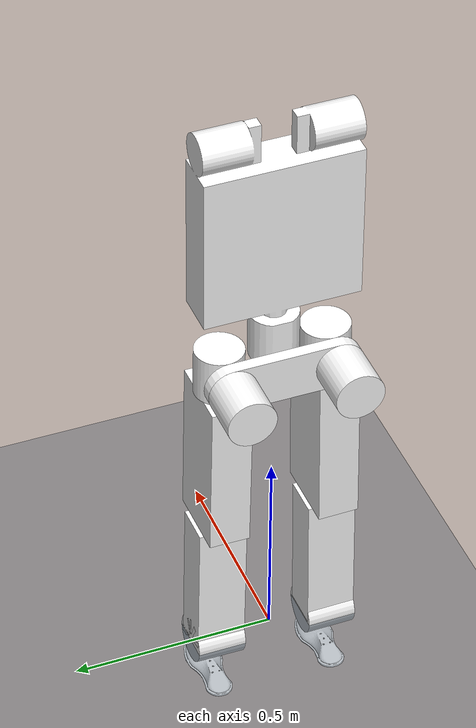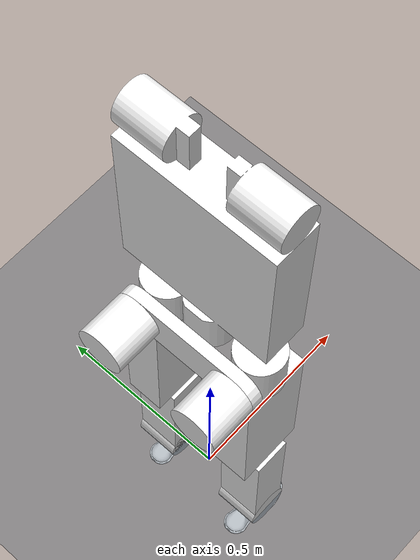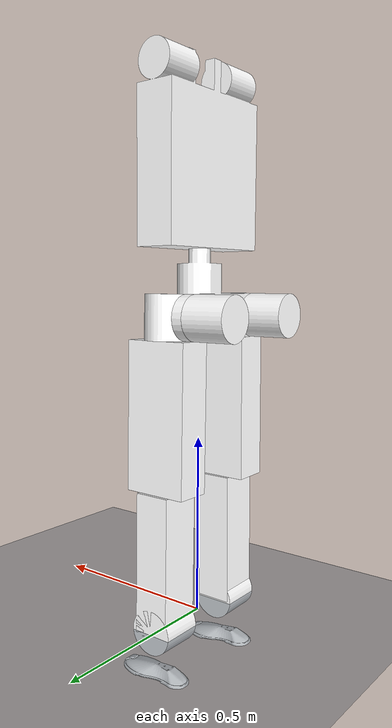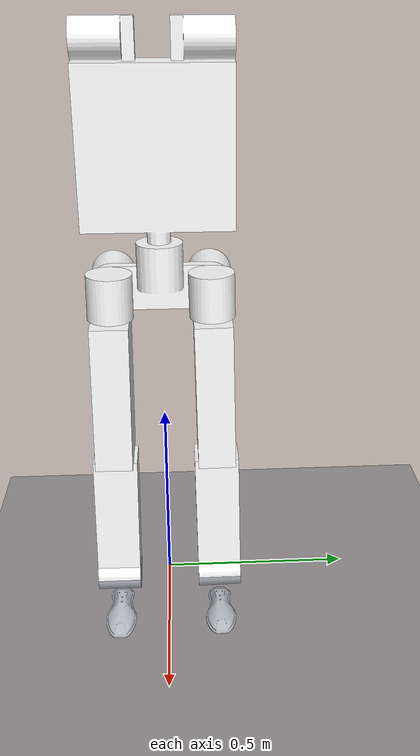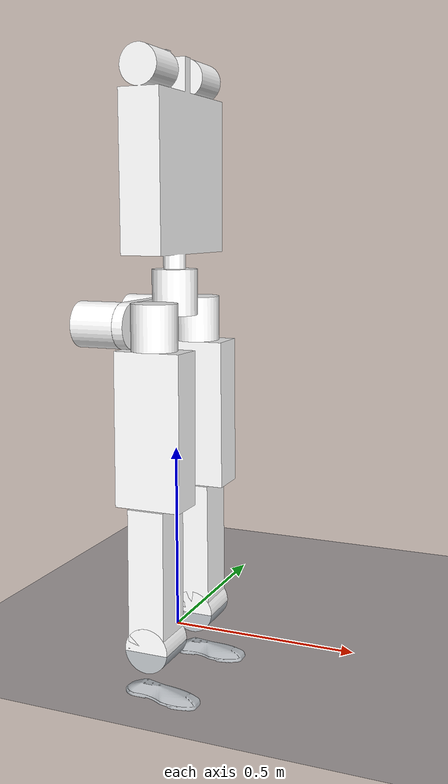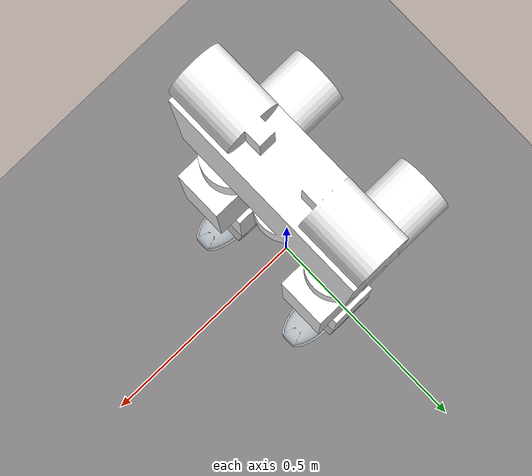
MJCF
<mujoco model="assembly_cowa_robot_new_foot4">
  <compiler angle="radian"/>
  <statistic meansize="0.165694" extent="1.91182" center="-0.00860132 3.79904e-10 -0.516269"/>
    <option timestep='0.001' iterations='50' solver='PGS' gravity='0 0 -9.81'>
    <flag sensornoise="enable" frictionloss="enable"/>
    </option>
    <size njmax="500" nconmax="100" />

    <default>
        <joint limited='true'/>
        <motor ctrllimited='true'/>
        <geom  condim='4' contype="1" conaffinity="15" solref='0.001 2' friction='0.9 0.2 0.2'/>
        <equality solref='0.001 2'/>
        <default class='visualgeom'>
            <geom material='visualgeom' condim='1' contype='0' conaffinity='0'/>
        </default>
    </default>

  <asset>
    <material name='visualgeom'  rgba='0.5 0.9 0.2 1'/>

    <mesh name="base_link" file="base_link.STL"/>
    <mesh name="left_leg_roll_link" file="left_leg_roll_link.STL"/>
    <mesh name="left_leg_yaw_link" file="left_leg_yaw_link.STL"/>
    <mesh name="left_leg_pitch_link" file="left_leg_pitch_link.STL"/>
    <mesh name="left_knee_link" file="left_knee_link.STL"/>
    <mesh name="left_ankle_pitch_link" file="left_ankle_pitch_link.STL"/>
    <mesh name="left_ankle_roll_link" file="left_ankle_roll_link111.STL"/>
    <mesh name="right_leg_roll_link" file="right_leg_roll_link.STL"/>
    <mesh name="right_leg_yaw_link" file="right_leg_yaw_link.STL"/>
    <mesh name="right_leg_pitch_link" file="right_leg_pitch_link.STL"/>
    <mesh name="right_knee_link" file="right_knee_link.STL"/>
    <mesh name="right_ankle_pitch_link" file="right_ankle_pitch_link.STL"/>
    <mesh name="right_ankle_roll_link" file="right_ankle_roll_link111.STL"/>

    <material name="matplane" reflectance="0." texture="texplane" texrepeat="1 1" texuniform="true"/>
    <material name="matplane2" reflectance="0.1" texture="texplane2" texrepeat="1 1" texuniform="true"/>

    <texture type="skybox" builtin="gradient" rgb1="0.3 0.5 0.7" rgb2="0 0 0" width="512" height="512"/>
    <texture name="texplane" type="2d" builtin="checker" rgb1=".2 .3 .4" rgb2=".1 0.15 0.2"
        width="512" height="512" mark="cross" markrgb=".8 .8 .8"/>
    <texture name="texplane2" type="2d" builtin="checker" rgb1="1 0.3137 0.1843" rgb2="0.0 0.30196 0.38039"
        width="512" height="512" mark="cross" markrgb=".8 .8 .8"/>

  </asset>

  <worldbody>

    <light directional="true" diffuse=".4 .4 .4" specular="0.1 0.1 0.1" pos="0 0 5.0" dir="0 0 -1" castshadow="false"/>
    <light directional="true" diffuse=".6 .6 .6" specular="0.2 0.2 0.2" pos="0 0 4" dir="0 0 -1"/>
    <geom name="ground" type="plane" size="0 0 1" pos="0.001 0 0" quat="1 0 0 0" material="matplane" condim="1" conaffinity='15'/>

    <body name="base_link" pos="0.0 0.0 1.22">
          <inertial pos="-0.0041092 0 -0.018435" quat="0.999967 0 0.0081641 0" mass="21.702" diaginertia="0.476381 0.27338 0.248479" />
      <joint type='slide' axis='1 0 0' limited='false' />
      <joint type='slide' axis='0 1 0' limited='false' />
      <joint type='slide' axis='0 0 1' limited='false' />
      <joint type='ball' limited='false' />
    <site name='imu' size='0.01' pos='0.0 0 0.0'/>

    <geom type="mesh" contype="1" conaffinity="1" group="1" class="visualgeom"  density="0" rgba="1 1 1 1" mesh="base_link"/>
    <body name="left_leg_roll_link" pos="-0.055 0.132 -0.38" quat="0.00494581 -0.707089 -0.00495101 0.707089">
      <inertial pos="0 0 0.09" mass="1.35717" diaginertia="0.0285005 0.0285005 0.024429"/>
      <joint name="left_leg_roll_joint" pos="0 0 0" axis="0 0 1" range="-2.5 0.12"/>
      <geom type="mesh" contype="0" conaffinity="0" group="1" class="visualgeom" density="0" rgba="1 1 1 1" mesh="left_leg_roll_link"/>
      <body name="left_leg_yaw_link" pos="0 0 -0.06" quat="0.707105 0 0.707108 0">
        <inertial pos="0 0 0" mass="1.3572" diaginertia="0.028501 0.028501 0.024429"/>
        <joint name="left_leg_yaw_joint" pos="0 0 0" axis="0 0 1" range="-0.5 0.5"/>
        <geom type="mesh" contype="0" conaffinity="0" group="1" class="visualgeom" density="0" rgba="1 1 1 1" mesh="left_leg_yaw_link"/>
        <body name="left_leg_pitch_link" pos="0 0 0.06" quat="0.499998 0.5 -0.5 0.500002">
          <inertial pos="0.202 0 0" quat="0.707107 0.707107 0 0" mass="8.7" diaginertia="0.25694 0.15854 0.10497"/>
          <joint name="left_leg_pitch_joint" pos="0 0 0" axis="0 0 1" range="-2 0.23"/>
          <geom type="mesh" contype="1" conaffinity="15" group="1" class="visualgeom" density="0" rgba="1 1 1 1" mesh="left_leg_pitch_link"/>
          <body name="left_knee_link" pos="0.404 0 0">
            <inertial pos="0.1865 0 0" quat="0.5 0.5 0.5 0.5" mass="3" diaginertia="0.57266 0.55625 0.091012"/>
            <joint name="left_knee_joint" pos="0 0 0" axis="0 0 1" range="-0.1 1.8"/>
            <geom type="mesh" contype="0" conaffinity="0" group="1" class="visualgeom" density="0" rgba="1 1 1 1" mesh="left_knee_link"/>
            <body name="left_ankle_pitch_link" pos="0.373 0 0" quat="0.717075 0 0 -0.696996">
              <inertial pos="0 0 0" mass="1.35717" diaginertia="0.0285005 0.0285005 0.024429"/>
              <joint name="left_ankle_pitch_joint" pos="0 0 0" axis="0 0 1" range="-1 0.5"/>
              <geom type="mesh" contype="0" conaffinity="0" group="1" class="visualgeom" density="0" rgba="1 1 1 1" mesh="left_ankle_pitch_link"/>
              <body name="left_ankle_roll_link" pos="0 0.0 0" quat="0.0149799 0.707089 -0.00507216 0.706948">
                <inertial pos="0.00022772 -0.0491 -0.0014033" quat="0.999948 0.0100299 0.000389691 0.00150337" mass="0.5612" diaginertia="0.32058 0.280467 0.187282"/>
                <joint name="left_ankle_roll_joint" pos="0 0 0." axis="-0.000 0.0283529 -0.999598" range="-0.3 0.3"/>
                <geom condim='4' solref='0.001 2' friction='0.9 0.2 0.2' type="mesh" contype="1" conaffinity="15" group="1" class="visualgeom" density="0" rgba="1 1 1 1" mesh="left_ankle_roll_link"/>
              </body>
            </body>
          </body>
        </body>
      </body>
    </body>
    <body name="right_leg_roll_link" pos="-0.055 -0.132 -0.38" quat="0.503489 0.496485 0.503493 0.496485">
      <inertial pos="0 0 -0.09" mass="1.35717" diaginertia="0.0285005 0.0285005 0.024429"/>
      <joint name="right_leg_roll_joint" pos="0 0 0" axis="0 0 1" range="-1.2 0.12"/>
      <geom type="mesh" contype="0" conaffinity="0" group="1" class="visualgeom" density="0" rgba="1 1 1 1" mesh="right_leg_roll_link"/>
      <body name="right_leg_yaw_link" pos="0 0 0.06" quat="0.499998 0.5 -0.5 0.500002">
        <inertial pos="0 0 0" mass="1.35717" diaginertia="0.0285005 0.0285005 0.024429"/>
        <joint name="right_leg_yaw_joint" pos="0 0 0" axis="0 0 -1" range="-0.5 0.5"/>
        <geom type="mesh" contype="0" conaffinity="0" group="1" class="visualgeom" density="0" rgba="1 1 1 1" mesh="right_leg_yaw_link"/>
        <body name="right_leg_pitch_link" pos="0 0 0.06" quat="0.499998 0.5 -0.5 0.500002">
          <inertial pos="0.202 0 0" quat="0.707107 0.707107 0 0" mass="8.7" diaginertia="0.256944 0.158543 0.104969"/>
          <joint name="right_leg_pitch_joint" pos="0 0 0" axis="0 0 1" range="-2 0.23"/>
          <geom type="mesh" contype="1" conaffinity="15" group="1" class="visualgeom" density="0" rgba="1 1 1 1" mesh="right_leg_pitch_link"/>
          <body name="right_knee_link" pos="0.39854 0 -0.071004">
            <inertial pos="0.191965 0 0.0710042" quat="0.5 0.5 0.5 0.5" mass="3" diaginertia="0.572663 0.556251 0.091012"/>
            <joint name="right_knee_joint" pos="0 0 0" axis="0 0 1" range="-0.1 1.8"/>
            <geom type="mesh" contype="0" conaffinity="0" group="1" class="visualgeom" density="0" rgba="1 1 1 1" mesh="right_knee_link"/>
            <body name="right_ankle_pitch_link" pos="0.37846 0 0.071004" quat="0.707105 0 0 -0.707108">
              <inertial pos="0 0 0" mass="1.35717" diaginertia="0.0285005 0.0285005 0.024429"/>
              <joint name="right_ankle_pitch_joint" pos="0 0 0" axis="0 0 1" range="-1 0.5"/>
              <geom type="mesh" contype="0" conaffinity="0" group="1" class="visualgeom" density="0" rgba="1 1 1 1" mesh="right_ankle_pitch_link"/>
              <body name="right_ankle_roll_link" pos="0 0.0 0" quat="0.0283042 -0.706541 -0.0283041 -0.706539">
                <inertial pos="-2.04624e-07 -0.0490985 -0.00140333" quat="0.999949 0.0100392 0.000294159 0.000806362" mass="0.5612" diaginertia="0.320607 0.280445 0.187287"/>
                <joint name="right_ankle_roll_joint" pos="0 0.0 0" axis="0 0.0283559 -0.999598" range="-0.3 0.3"/>
                <geom condim='4' solref='0.001 2' friction='0.9 0.2 0.2' type="mesh" contype="1" conaffinity="15" group="1" class="visualgeom" density="0" rgba="1 1 1 1" mesh="right_ankle_roll_link"/>
              </body>
            </body>
          </body>
        </body>
      </body>
    </body>
  </body>
  </worldbody>
  <actuator>
    <motor name="left_leg_roll_joint" joint="left_leg_roll_joint" gear="1" ctrllimited="true" ctrlrange="-100 100"/>
    <motor name="left_leg_yaw_joint" joint="left_leg_yaw_joint" gear="1" ctrllimited="true" ctrlrange="-100 100"/>
    <motor name="left_leg_pitch_joint" joint="left_leg_pitch_joint" gear="1" ctrllimited="true" ctrlrange="-250 250"/>
    <motor name="left_knee_joint" joint="left_knee_joint" gear="1" ctrllimited="true" ctrlrange="-250 250"/>
    <motor name="left_ankle_pitch_joint" joint="left_ankle_pitch_joint" gear="1" ctrllimited="true" ctrlrange="-75 75"/>
    <motor name="left_ankle_roll_joint" joint="left_ankle_roll_joint" gear="1" ctrllimited="true" ctrlrange="-75 75"/>
    <motor name="right_leg_roll_joint" joint="right_leg_roll_joint" gear="1" ctrllimited="true" ctrlrange="-100 100"/>
    <motor name="right_leg_yaw_joint" joint="right_leg_yaw_joint" gear="1" ctrllimited="true" ctrlrange="-100 100"/>
    <motor name="right_leg_pitch_joint" joint="right_leg_pitch_joint" gear="1" ctrllimited="true" ctrlrange="-250 250"/>
    <motor name="right_knee_joint" joint="right_knee_joint" gear="1" ctrllimited="true" ctrlrange="-250 250"/>
    <motor name="right_ankle_pitch_joint" joint="right_ankle_pitch_joint" gear="1" ctrllimited="true" ctrlrange="-75 75"/>
    <motor name="right_ankle_roll_joint" joint="right_ankle_roll_joint" gear="1" ctrllimited="true" ctrlrange="-75 75"/>
  </actuator>

     <sensor>
        <actuatorpos name='left_leg_roll_joint_p'  actuator='left_leg_roll_joint' user='13'/>
        <actuatorpos name='left_leg_yaw_joint_p'  actuator='left_leg_yaw_joint' user='13'/>
        <actuatorpos name='left_leg_pitch_joint_p'  actuator='left_leg_pitch_joint' user='13'/>
        <actuatorpos name='left_knee_joint_p'  actuator='left_knee_joint' user='13'/>
        <actuatorpos name='left_ankle_pitch_joint_p'  actuator='left_ankle_pitch_joint' user='13'/>
        <actuatorpos name='left_ankle_roll_joint_p'  actuator='left_ankle_roll_joint' user='13'/>
        <actuatorpos name='right_leg_roll_joint_p'  actuator='right_leg_roll_joint' user='13'/>
        <actuatorpos name='right_leg_yaw_joint_p'  actuator='right_leg_yaw_joint' user='13'/>
        <actuatorpos name='right_leg_pitch_joint_p'  actuator='right_leg_pitch_joint' user='13'/>
        <actuatorpos name='right_knee_joint_p'  actuator='right_knee_joint' user='13'/>
        <actuatorpos name='right_ankle_pitch_joint_p'  actuator='right_ankle_pitch_joint' user='13'/>
        <actuatorpos name='right_ankle_roll_joint_p'  actuator='right_ankle_roll_joint' user='13'/>

        <actuatorvel name='left_leg_roll_joint_v'  actuator='left_leg_roll_joint' user='13'/>
        <actuatorvel name='left_leg_yaw_joint_v'  actuator='left_leg_yaw_joint' user='13'/>
        <actuatorvel name='left_leg_pitch_joint_v'  actuator='left_leg_pitch_joint' user='13'/>
        <actuatorvel name='left_knee_joint_v'  actuator='left_knee_joint' user='13'/>
        <actuatorvel name='left_ankle_pitch_joint_v'  actuator='left_ankle_pitch_joint' user='13'/>
        <actuatorvel name='left_ankle_roll_joint_v'  actuator='left_ankle_roll_joint' user='13'/>
        <actuatorvel name='right_leg_roll_joint_v'  actuator='right_leg_roll_joint' user='13'/>
        <actuatorvel name='right_leg_yaw_joint_v'  actuator='right_leg_yaw_joint' user='13'/>
        <actuatorvel name='right_leg_pitch_joint_v'  actuator='right_leg_pitch_joint' user='13'/>
        <actuatorvel name='right_knee_joint_v'  actuator='right_knee_joint' user='13'/>
        <actuatorvel name='right_ankle_pitch_joint_v'  actuator='right_ankle_pitch_joint' user='13'/>
        <actuatorvel name='right_ankle_roll_joint_v'  actuator='right_ankle_roll_joint' user='13'/>

        <actuatorfrc name='left_leg_roll_joint_f'  actuator='left_leg_roll_joint' user='13' noise='1e-3'/>
        <actuatorfrc name='left_leg_yaw_joint_f'  actuator='left_leg_yaw_joint' user='13' noise='1e-3'/>
        <actuatorfrc name='left_leg_pitch_joint_f'  actuator='left_leg_pitch_joint' user='13' noise='1e-3'/>
        <actuatorfrc name='left_knee_joint_f'  actuator='left_knee_joint' user='13' noise='1e-3'/>
        <actuatorfrc name='left_ankle_pitch_joint_f'  actuator='left_ankle_pitch_joint' user='13' noise='1e-3'/>
        <actuatorfrc name='left_ankle_roll_joint_f'  actuator='left_ankle_roll_joint' user='13' noise='1e-3'/>
        <actuatorfrc name='right_leg_roll_joint_f'  actuator='right_leg_roll_joint' user='13' noise='1e-3'/>
        <actuatorfrc name='right_leg_yaw_joint_f'  actuator='right_leg_yaw_joint' user='13' noise='1e-3'/>
        <actuatorfrc name='right_leg_pitch_joint_f'  actuator='right_leg_pitch_joint' user='13' noise='1e-3'/>
        <actuatorfrc name='right_knee_joint_f'  actuator='right_knee_joint' user='13' noise='1e-3'/>
        <actuatorfrc name='right_ankle_pitch_joint_f'  actuator='right_ankle_pitch_joint' user='13' noise='1e-3'/>
        <actuatorfrc name='right_ankle_roll_joint_f'  actuator='right_ankle_roll_joint' user='13' noise='1e-3'/>

        <framequat     name='orientation' objtype='site' noise='0.001' objname='imu'/>
        <framepos     name='position' objtype='site' noise='0.001' objname='imu'/>
        <gyro          name='angular-velocity'    site='imu' noise='0.005' cutoff='34.9'/>
        <velocimeter   name='linear-velocity'     site='imu' noise='0.001' cutoff='30'/>
        <accelerometer name='linear-acceleration' site='imu' noise='0.005' cutoff='157'/>
        <magnetometer  name='magnetometer'        site='imu'/>

    </sensor>
</mujoco>
